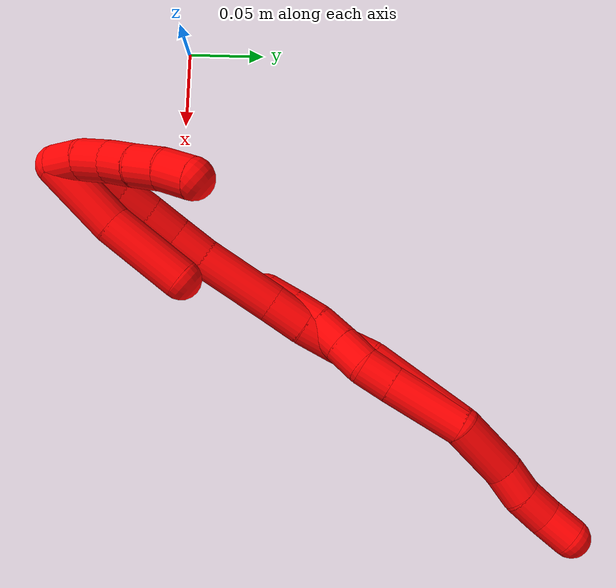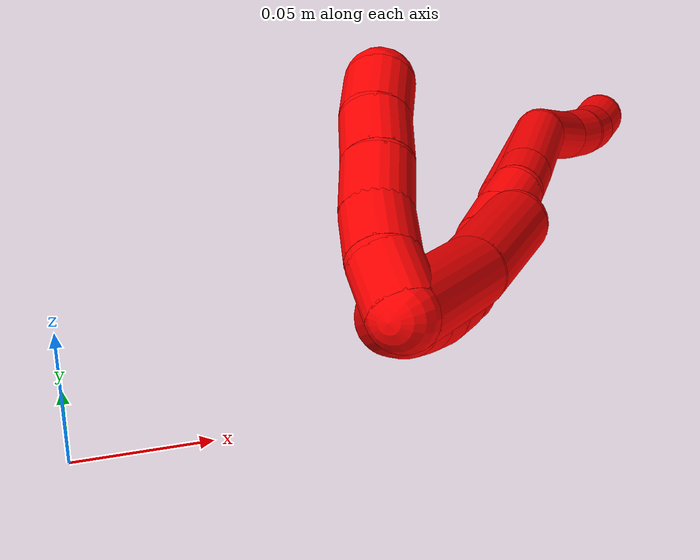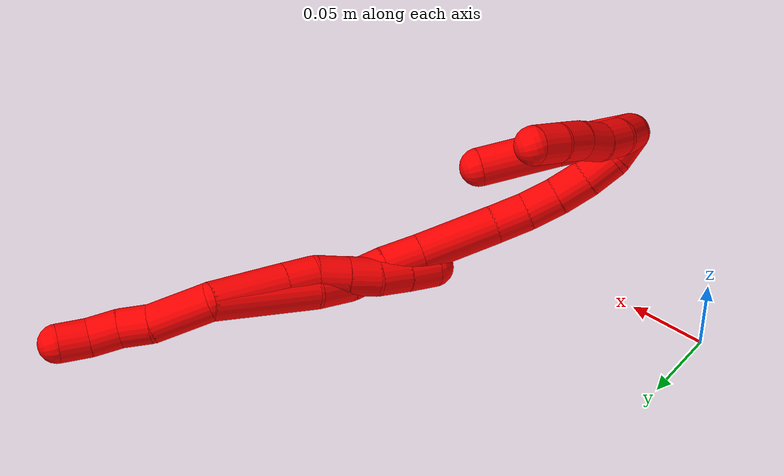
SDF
<sdf version="1.7">
 <world name="default">
  <model name="2">
   <static>0</static>
   <link name="2">
    <collision name="collision-cylinder-e_1_2_8">
     <pose>0.007079 -0.001463 -0.023442 3.07928 0.292723 2.72488</pose>
     <geometry><cylinder><radius>0.0125</radius><length>0.049062</length></cylinder></geometry>
     <surface>
      <friction><ode><mu>1.16</mu><mu2>1.16</mu2><slip1>0</slip1><slip2>0</slip2></ode></friction>
      <contact><ode><kp>1e+06</kp><kd>1</kd><max_vel>0</max_vel><min_depth>0.001</min_depth></ode></contact>
     </surface>
    </collision>
    <visual name="visual-cylinder-e_1_2_8">
     <pose>0.007079 -0.001463 -0.023442 3.07928 0.292723 2.72488</pose>
     <geometry><cylinder><radius>0.0125</radius><length>0.049062</length></cylinder></geometry>
     <material><ambient>1 0 0 1</ambient></material>
    </visual>
    <collision name="collision-cylinder-e_2_8_9">
     <pose>0.01697 -0.003338 -0.056877 3.10035 0.274128 2.84476</pose>
     <geometry><cylinder><radius>0.0125</radius><length>0.020779</length></cylinder></geometry>
     <surface>
      <friction><ode><mu>1.16</mu><mu2>1.16</mu2><slip1>0</slip1><slip2>0</slip2></ode></friction>
      <contact><ode><kp>1e+06</kp><kd>1</kd><max_vel>0</max_vel><min_depth>0.001</min_depth></ode></contact>
     </surface>
    </collision>
    <visual name="visual-cylinder-e_2_8_9">
     <pose>0.01697 -0.003338 -0.056877 3.10035 0.274128 2.84476</pose>
     <geometry><cylinder><radius>0.0125</radius><length>0.020779</length></cylinder></geometry>
     <material><ambient>1 0 0 1</ambient></material>
    </visual>
    <collision name="collision-cylinder-e_3_9_10">
     <pose>0.023505 -0.001646 -0.075987 -2.91484 0.37865 -2.06928</pose>
     <geometry><cylinder><radius>0.0125</radius><length>0.020141</length></cylinder></geometry>
     <surface>
      <friction><ode><mu>1.16</mu><mu2>1.16</mu2><slip1>0</slip1><slip2>0</slip2></ode></friction>
      <contact><ode><kp>1e+06</kp><kd>1</kd><max_vel>0</max_vel><min_depth>0.001</min_depth></ode></contact>
     </surface>
    </collision>
    <visual name="visual-cylinder-e_3_9_10">
     <pose>0.023505 -0.001646 -0.075987 -2.91484 0.37865 -2.06928</pose>
     <geometry><cylinder><radius>0.0125</radius><length>0.020141</length></cylinder></geometry>
     <material><ambient>1 0 0 1</ambient></material>
    </visual>
    <collision name="collision-cylinder-e_4_10_11">
     <pose>0.031024 0.002314 -0.094177 -2.93967 0.389053 -2.1917</pose>
     <geometry><cylinder><radius>0.0125</radius><length>0.020017</length></cylinder></geometry>
     <surface>
      <friction><ode><mu>1.16</mu><mu2>1.16</mu2><slip1>0</slip1><slip2>0</slip2></ode></friction>
      <contact><ode><kp>1e+06</kp><kd>1</kd><max_vel>0</max_vel><min_depth>0.001</min_depth></ode></contact>
     </surface>
    </collision>
    <visual name="visual-cylinder-e_4_10_11">
     <pose>0.031024 0.002314 -0.094177 -2.93967 0.389053 -2.1917</pose>
     <geometry><cylinder><radius>0.0125</radius><length>0.020017</length></cylinder></geometry>
     <material><ambient>1 0 0 1</ambient></material>
    </visual>
    <collision name="collision-cylinder-e_5_11_12">
     <pose>0.038764 0.004236 -0.112439 -3.13458 0.405391 -3.10748</pose>
     <geometry><cylinder><radius>0.0125</radius><length>0.020001</length></cylinder></geometry>
     <surface>
      <friction><ode><mu>1.16</mu><mu2>1.16</mu2><slip1>0</slip1><slip2>0</slip2></ode></friction>
      <contact><ode><kp>1e+06</kp><kd>1</kd><max_vel>0</max_vel><min_depth>0.001</min_depth></ode></contact>
     </surface>
    </collision>
    <visual name="visual-cylinder-e_5_11_12">
     <pose>0.038764 0.004236 -0.112439 -3.13458 0.405391 -3.10748</pose>
     <geometry><cylinder><radius>0.0125</radius><length>0.020001</length></cylinder></geometry>
     <material><ambient>1 0 0 1</ambient></material>
    </visual>
    <collision name="collision-cylinder-e_6_12_6">
     <pose>0.046538 0.003998 -0.130862 3.10889 0.39299 2.97766</pose>
     <geometry><cylinder><radius>0.0125</radius><length>0.020001</length></cylinder></geometry>
     <surface>
      <friction><ode><mu>1.16</mu><mu2>1.16</mu2><slip1>0</slip1><slip2>0</slip2></ode></friction>
      <contact><ode><kp>1e+06</kp><kd>1</kd><max_vel>0</max_vel><min_depth>0.001</min_depth></ode></contact>
     </surface>
    </collision>
    <visual name="visual-cylinder-e_6_12_6">
     <pose>0.046538 0.003998 -0.130862 3.10889 0.39299 2.97766</pose>
     <geometry><cylinder><radius>0.0125</radius><length>0.020001</length></cylinder></geometry>
     <material><ambient>1 0 0 1</ambient></material>
    </visual>
    <collision name="collision-cylinder-e_1_2_13">
     <pose>0.002902 -1e-05 0.019615 0.000534 0.146876 3.9e-05</pose>
     <geometry><cylinder><radius>0.0125</radius><length>0.039656</length></cylinder></geometry>
     <surface>
      <friction><ode><mu>1.16</mu><mu2>1.16</mu2><slip1>0</slip1><slip2>0</slip2></ode></friction>
      <contact><ode><kp>1e+06</kp><kd>1</kd><max_vel>0</max_vel><min_depth>0.001</min_depth></ode></contact>
     </surface>
    </collision>
    <visual name="visual-cylinder-e_1_2_13">
     <pose>0.002902 -1e-05 0.019615 0.000534 0.146876 3.9e-05</pose>
     <geometry><cylinder><radius>0.0125</radius><length>0.039656</length></cylinder></geometry>
     <material><ambient>1 0 0 1</ambient></material>
    </visual>
    <collision name="collision-cylinder-e_2_13_14">
     <pose>0.006564 -0.002028 0.049067 0.201265 0.075556 0.007633</pose>
     <geometry><cylinder><radius>0.0125</radius><length>0.020137</length></cylinder></geometry>
     <surface>
      <friction><ode><mu>1.16</mu><mu2>1.16</mu2><slip1>0</slip1><slip2>0</slip2></ode></friction>
      <contact><ode><kp>1e+06</kp><kd>1</kd><max_vel>0</max_vel><min_depth>0.001</min_depth></ode></contact>
     </surface>
    </collision>
    <visual name="visual-cylinder-e_2_13_14">
     <pose>0.006564 -0.002028 0.049067 0.201265 0.075556 0.007633</pose>
     <geometry><cylinder><radius>0.0125</radius><length>0.020137</length></cylinder></geometry>
     <material><ambient>1 0 0 1</ambient></material>
    </visual>
    <collision name="collision-cylinder-e_3_14_15">
     <pose>0.007194 -0.004138 0.068983 0.010239 -0.012912 -6.6e-05</pose>
     <geometry><cylinder><radius>0.0125</radius><length>0.020161</length></cylinder></geometry>
     <surface>
      <friction><ode><mu>1.16</mu><mu2>1.16</mu2><slip1>0</slip1><slip2>0</slip2></ode></friction>
      <contact><ode><kp>1e+06</kp><kd>1</kd><max_vel>0</max_vel><min_depth>0.001</min_depth></ode></contact>
     </surface>
    </collision>
    <visual name="visual-cylinder-e_3_14_15">
     <pose>0.007194 -0.004138 0.068983 0.010239 -0.012912 -6.6e-05</pose>
     <geometry><cylinder><radius>0.0125</radius><length>0.020161</length></cylinder></geometry>
     <material><ambient>1 0 0 1</ambient></material>
    </visual>
    <collision name="collision-cylinder-e_4_15_5">
     <pose>0.005088 -0.004785 0.088873 0.055301 -0.198405 -0.005505</pose>
     <geometry><cylinder><radius>0.0125</radius><length>0.020045</length></cylinder></geometry>
     <surface>
      <friction><ode><mu>1.16</mu><mu2>1.16</mu2><slip1>0</slip1><slip2>0</slip2></ode></friction>
      <contact><ode><kp>1e+06</kp><kd>1</kd><max_vel>0</max_vel><min_depth>0.001</min_depth></ode></contact>
     </surface>
    </collision>
    <visual name="visual-cylinder-e_4_15_5">
     <pose>0.005088 -0.004785 0.088873 0.055301 -0.198405 -0.005505</pose>
     <geometry><cylinder><radius>0.0125</radius><length>0.020045</length></cylinder></geometry>
     <material><ambient>1 0 0 1</ambient></material>
    </visual>
    <collision name="collision-cylinder-e_1_2_16">
     <pose>0.011767 0.002171 -0.032112 -3.0741 0.3505 -2.7648</pose>
     <geometry><cylinder><radius>0.0125</radius><length>0.068537</length></cylinder></geometry>
     <surface>
      <friction><ode><mu>1.16</mu><mu2>1.16</mu2><slip1>0</slip1><slip2>0</slip2></ode></friction>
      <contact><ode><kp>1e+06</kp><kd>1</kd><max_vel>0</max_vel><min_depth>0.001</min_depth></ode></contact>
     </surface>
    </collision>
    <visual name="visual-cylinder-e_1_2_16">
     <pose>0.011767 0.002171 -0.032112 -3.0741 0.3505 -2.7648</pose>
     <geometry><cylinder><radius>0.0125</radius><length>0.068537</length></cylinder></geometry>
     <material><ambient>1 0 0 1</ambient></material>
    </visual>
    <collision name="collision-cylinder-e_2_16_17">
     <pose>0.028717 0.003304 -0.074793 3.04377 0.454059 2.72397</pose>
     <geometry><cylinder><radius>0.0125</radius><length>0.023636</length></cylinder></geometry>
     <surface>
      <friction><ode><mu>1.16</mu><mu2>1.16</mu2><slip1>0</slip1><slip2>0</slip2></ode></friction>
      <contact><ode><kp>1e+06</kp><kd>1</kd><max_vel>0</max_vel><min_depth>0.001</min_depth></ode></contact>
     </surface>
    </collision>
    <visual name="visual-cylinder-e_2_16_17">
     <pose>0.028717 0.003304 -0.074793 3.04377 0.454059 2.72397</pose>
     <geometry><cylinder><radius>0.0125</radius><length>0.023636</length></cylinder></geometry>
     <material><ambient>1 0 0 1</ambient></material>
    </visual>
    <collision name="collision-cylinder-e_3_17_18">
     <pose>0.035561 1.3e-05 -0.097433 2.957 0.134404 1.25739</pose>
     <geometry><cylinder><radius>0.0125</radius><length>0.024781</length></cylinder></geometry>
     <surface>
      <friction><ode><mu>1.16</mu><mu2>1.16</mu2><slip1>0</slip1><slip2>0</slip2></ode></friction>
      <contact><ode><kp>1e+06</kp><kd>1</kd><max_vel>0</max_vel><min_depth>0.001</min_depth></ode></contact>
     </surface>
    </collision>
    <visual name="visual-cylinder-e_3_17_18">
     <pose>0.035561 1.3e-05 -0.097433 2.957 0.134404 1.25739</pose>
     <geometry><cylinder><radius>0.0125</radius><length>0.024781</length></cylinder></geometry>
     <material><ambient>1 0 0 1</ambient></material>
    </visual>
    <collision name="collision-cylinder-e_4_18_19">
     <pose>0.038721 -0.003262 -0.121664 3.05785 0.122317 1.94159</pose>
     <geometry><cylinder><radius>0.0125</radius><length>0.024591</length></cylinder></geometry>
     <surface>
      <friction><ode><mu>1.16</mu><mu2>1.16</mu2><slip1>0</slip1><slip2>0</slip2></ode></friction>
      <contact><ode><kp>1e+06</kp><kd>1</kd><max_vel>0</max_vel><min_depth>0.001</min_depth></ode></contact>
     </surface>
    </collision>
    <visual name="visual-cylinder-e_4_18_19">
     <pose>0.038721 -0.003262 -0.121664 3.05785 0.122317 1.94159</pose>
     <geometry><cylinder><radius>0.0125</radius><length>0.024591</length></cylinder></geometry>
     <material><ambient>1 0 0 1</ambient></material>
    </visual>
    <collision name="collision-cylinder-e_5_19_20">
     <pose>0.042731 -0.006982 -0.159131 3.03533 0.098271 1.49259</pose>
     <geometry><cylinder><radius>0.0125</radius><length>0.051146</length></cylinder></geometry>
     <surface>
      <friction><ode><mu>1.16</mu><mu2>1.16</mu2><slip1>0</slip1><slip2>0</slip2></ode></friction>
      <contact><ode><kp>1e+06</kp><kd>1</kd><max_vel>0</max_vel><min_depth>0.001</min_depth></ode></contact>
     </surface>
    </collision>
    <visual name="visual-cylinder-e_5_19_20">
     <pose>0.042731 -0.006982 -0.159131 3.03533 0.098271 1.49259</pose>
     <geometry><cylinder><radius>0.0125</radius><length>0.051146</length></cylinder></geometry>
     <material><ambient>1 0 0 1</ambient></material>
    </visual>
    <collision name="collision-cylinder-e_6_20_21">
     <pose>0.045122 -0.010589 -0.195702 3.06116 -0.01038 -0.256557</pose>
     <geometry><cylinder><radius>0.0125</radius><length>0.022604</length></cylinder></geometry>
     <surface>
      <friction><ode><mu>1.16</mu><mu2>1.16</mu2><slip1>0</slip1><slip2>0</slip2></ode></friction>
      <contact><ode><kp>1e+06</kp><kd>1</kd><max_vel>0</max_vel><min_depth>0.001</min_depth></ode></contact>
     </surface>
    </collision>
    <visual name="visual-cylinder-e_6_20_21">
     <pose>0.045122 -0.010589 -0.195702 3.06116 -0.01038 -0.256557</pose>
     <geometry><cylinder><radius>0.0125</radius><length>0.022604</length></cylinder></geometry>
     <material><ambient>1 0 0 1</ambient></material>
    </visual>
    <collision name="collision-cylinder-e_7_21_22">
     <pose>0.043699 -0.012836 -0.217661 3.01704 -0.120616 -1.53861</pose>
     <geometry><cylinder><radius>0.0125</radius><length>0.021711</length></cylinder></geometry>
     <surface>
      <friction><ode><mu>1.16</mu><mu2>1.16</mu2><slip1>0</slip1><slip2>0</slip2></ode></friction>
      <contact><ode><kp>1e+06</kp><kd>1</kd><max_vel>0</max_vel><min_depth>0.001</min_depth></ode></contact>
     </surface>
    </collision>
    <visual name="visual-cylinder-e_7_21_22">
     <pose>0.043699 -0.012836 -0.217661 3.01704 -0.120616 -1.53861</pose>
     <geometry><cylinder><radius>0.0125</radius><length>0.021711</length></cylinder></geometry>
     <material><ambient>1 0 0 1</ambient></material>
    </visual>
    <collision name="collision-cylinder-e_8_22_23">
     <pose>0.040593 -0.016293 -0.238833 2.94209 -0.166758 -1.39149</pose>
     <geometry><cylinder><radius>0.0125</radius><length>0.021683</length></cylinder></geometry>
     <surface>
      <friction><ode><mu>1.16</mu><mu2>1.16</mu2><slip1>0</slip1><slip2>0</slip2></ode></friction>
      <contact><ode><kp>1e+06</kp><kd>1</kd><max_vel>0</max_vel><min_depth>0.001</min_depth></ode></contact>
     </surface>
    </collision>
    <visual name="visual-cylinder-e_8_22_23">
     <pose>0.040593 -0.016293 -0.238833 2.94209 -0.166758 -1.39149</pose>
     <geometry><cylinder><radius>0.0125</radius><length>0.021683</length></cylinder></geometry>
     <material><ambient>1 0 0 1</ambient></material>
    </visual>
    <collision name="collision-cylinder-e_9_23_24">
     <pose>0.03623 -0.021263 -0.258947 2.85387 -0.249825 -1.42835</pose>
     <geometry><cylinder><radius>0.0125</radius><length>0.020742</length></cylinder></geometry>
     <surface>
      <friction><ode><mu>1.16</mu><mu2>1.16</mu2><slip1>0</slip1><slip2>0</slip2></ode></friction>
      <contact><ode><kp>1e+06</kp><kd>1</kd><max_vel>0</max_vel><min_depth>0.001</min_depth></ode></contact>
     </surface>
    </collision>
    <visual name="visual-cylinder-e_9_23_24">
     <pose>0.03623 -0.021263 -0.258947 2.85387 -0.249825 -1.42835</pose>
     <geometry><cylinder><radius>0.0125</radius><length>0.020742</length></cylinder></geometry>
     <material><ambient>1 0 0 1</ambient></material>
    </visual>
    <collision name="collision-cylinder-e_10_24_1">
     <pose>0.032067 -0.030029 -0.276844 2.5203 -0.156056 -0.47778</pose>
     <geometry><cylinder><radius>0.0125</radius><length>0.020569</length></cylinder></geometry>
     <surface>
      <friction><ode><mu>1.16</mu><mu2>1.16</mu2><slip1>0</slip1><slip2>0</slip2></ode></friction>
      <contact><ode><kp>1e+06</kp><kd>1</kd><max_vel>0</max_vel><min_depth>0.001</min_depth></ode></contact>
     </surface>
    </collision>
    <visual name="visual-cylinder-e_10_24_1">
     <pose>0.032067 -0.030029 -0.276844 2.5203 -0.156056 -0.47778</pose>
     <geometry><cylinder><radius>0.0125</radius><length>0.020569</length></cylinder></geometry>
     <material><ambient>1 0 0 1</ambient></material>
    </visual>
    <collision name="collision-cylinder-e_1_1_25">
     <pose>0.029834 -0.038372 -0.261208 0.101342 -0.026417 -0.00134</pose>
     <geometry><cylinder><radius>0.0125</radius><length>0.048057</length></cylinder></geometry>
     <surface>
      <friction><ode><mu>1.16</mu><mu2>1.16</mu2><slip1>0</slip1><slip2>0</slip2></ode></friction>
      <contact><ode><kp>1e+06</kp><kd>1</kd><max_vel>0</max_vel><min_depth>0.001</min_depth></ode></contact>
     </surface>
    </collision>
    <visual name="visual-cylinder-e_1_1_25">
     <pose>0.029834 -0.038372 -0.261208 0.101342 -0.026417 -0.00134</pose>
     <geometry><cylinder><radius>0.0125</radius><length>0.048057</length></cylinder></geometry>
     <material><ambient>1 0 0 1</ambient></material>
    </visual>
    <collision name="collision-cylinder-e_2_25_4">
     <pose>0.025649 -0.040984 -0.211584 0.007048 -0.13713 -0.000484</pose>
     <geometry><cylinder><radius>0.0125</radius><length>0.051943</length></cylinder></geometry>
     <surface>
      <friction><ode><mu>1.16</mu><mu2>1.16</mu2><slip1>0</slip1><slip2>0</slip2></ode></friction>
      <contact><ode><kp>1e+06</kp><kd>1</kd><max_vel>0</max_vel><min_depth>0.001</min_depth></ode></contact>
     </surface>
    </collision>
    <visual name="visual-cylinder-e_2_25_4">
     <pose>0.025649 -0.040984 -0.211584 0.007048 -0.13713 -0.000484</pose>
     <geometry><cylinder><radius>0.0125</radius><length>0.051943</length></cylinder></geometry>
     <material><ambient>1 0 0 1</ambient></material>
    </visual>
    <collision name="collision-cylinder-e_1_1_26">
     <pose>0.02273 -0.032483 -0.2798 -0.577738 -0.88493 0.279767</pose>
     <geometry><cylinder><radius>0.0125</radius><length>0.02</length></cylinder></geometry>
     <surface>
      <friction><ode><mu>1.16</mu><mu2>1.16</mu2><slip1>0</slip1><slip2>0</slip2></ode></friction>
      <contact><ode><kp>1e+06</kp><kd>1</kd><max_vel>0</max_vel><min_depth>0.001</min_depth></ode></contact>
     </surface>
    </collision>
    <visual name="visual-cylinder-e_1_1_26">
     <pose>0.02273 -0.032483 -0.2798 -0.577738 -0.88493 0.279767</pose>
     <geometry><cylinder><radius>0.0125</radius><length>0.02</length></cylinder></geometry>
     <material><ambient>1 0 0 1</ambient></material>
    </visual>
    <collision name="collision-cylinder-e_2_26_27">
     <pose>0.008269 -0.026664 -0.267478 -0.324585 -0.737276 0.126331</pose>
     <geometry><cylinder><radius>0.0125</radius><length>0.02</length></cylinder></geometry>
     <surface>
      <friction><ode><mu>1.16</mu><mu2>1.16</mu2><slip1>0</slip1><slip2>0</slip2></ode></friction>
      <contact><ode><kp>1e+06</kp><kd>1</kd><max_vel>0</max_vel><min_depth>0.001</min_depth></ode></contact>
     </surface>
    </collision>
    <visual name="visual-cylinder-e_2_26_27">
     <pose>0.008269 -0.026664 -0.267478 -0.324585 -0.737276 0.126331</pose>
     <geometry><cylinder><radius>0.0125</radius><length>0.02</length></cylinder></geometry>
     <material><ambient>1 0 0 1</ambient></material>
    </visual>
    <collision name="collision-cylinder-e_3_27_28">
     <pose>-0.005899 -0.023764 -0.253806 -0.080762 -0.839739 0.036069</pose>
     <geometry><cylinder><radius>0.0125</radius><length>0.02</length></cylinder></geometry>
     <surface>
      <friction><ode><mu>1.16</mu><mu2>1.16</mu2><slip1>0</slip1><slip2>0</slip2></ode></friction>
      <contact><ode><kp>1e+06</kp><kd>1</kd><max_vel>0</max_vel><min_depth>0.001</min_depth></ode></contact>
     </surface>
    </collision>
    <visual name="visual-cylinder-e_3_27_28">
     <pose>-0.005899 -0.023764 -0.253806 -0.080762 -0.839739 0.036069</pose>
     <geometry><cylinder><radius>0.0125</radius><length>0.02</length></cylinder></geometry>
     <material><ambient>1 0 0 1</ambient></material>
    </visual>
    <collision name="collision-cylinder-e_4_28_29">
     <pose>-0.020333 -0.021712 -0.240162 -0.213175 -0.773941 0.087148</pose>
     <geometry><cylinder><radius>0.0125</radius><length>0.02</length></cylinder></geometry>
     <surface>
      <friction><ode><mu>1.16</mu><mu2>1.16</mu2><slip1>0</slip1><slip2>0</slip2></ode></friction>
      <contact><ode><kp>1e+06</kp><kd>1</kd><max_vel>0</max_vel><min_depth>0.001</min_depth></ode></contact>
     </surface>
    </collision>
    <visual name="visual-cylinder-e_4_28_29">
     <pose>-0.020333 -0.021712 -0.240162 -0.213175 -0.773941 0.087148</pose>
     <geometry><cylinder><radius>0.0125</radius><length>0.02</length></cylinder></geometry>
     <material><ambient>1 0 0 1</ambient></material>
    </visual>
    <collision name="collision-cylinder-e_5_29_3">
     <pose>-0.033308 -0.01928 -0.225214 -0.115053 -0.641661 0.038271</pose>
     <geometry><cylinder><radius>0.0125</radius><length>0.02</length></cylinder></geometry>
     <surface>
      <friction><ode><mu>1.16</mu><mu2>1.16</mu2><slip1>0</slip1><slip2>0</slip2></ode></friction>
      <contact><ode><kp>1e+06</kp><kd>1</kd><max_vel>0</max_vel><min_depth>0.001</min_depth></ode></contact>
     </surface>
    </collision>
    <visual name="visual-cylinder-e_5_29_3">
     <pose>-0.033308 -0.01928 -0.225214 -0.115053 -0.641661 0.038271</pose>
     <geometry><cylinder><radius>0.0125</radius><length>0.02</length></cylinder></geometry>
     <material><ambient>1 0 0 1</ambient></material>
    </visual>
    <collision name="collision-sphere-3">
     <pose>-0.039293 -0.01836 -0.217256 0 -0 0</pose>
     <geometry><sphere><radius>0.0125</radius></sphere></geometry>
     <surface>
      <friction><ode><mu>1.16</mu><mu2>1.16</mu2><slip1>0</slip1><slip2>0</slip2></ode></friction>
      <contact><ode><kp>1e+06</kp><kd>1</kd><max_vel>0</max_vel><min_depth>0.001</min_depth></ode></contact>
     </surface>
    </collision>
    <visual name="visual-sphere-3">
     <pose>-0.039293 -0.01836 -0.217256 0 -0 0</pose>
     <geometry><sphere><radius>0.0125</radius></sphere></geometry>
     <material><ambient>1 0 0 1</ambient></material>
    </visual>
    <collision name="collision-sphere-29">
     <pose>-0.027323 -0.020199 -0.233172 0 -0 0</pose>
     <geometry><sphere><radius>0.0125</radius></sphere></geometry>
     <surface>
      <friction><ode><mu>1.16</mu><mu2>1.16</mu2><slip1>0</slip1><slip2>0</slip2></ode></friction>
      <contact><ode><kp>1e+06</kp><kd>1</kd><max_vel>0</max_vel><min_depth>0.001</min_depth></ode></contact>
     </surface>
    </collision>
    <visual name="visual-sphere-29">
     <pose>-0.027323 -0.020199 -0.233172 0 -0 0</pose>
     <geometry><sphere><radius>0.0125</radius></sphere></geometry>
     <material><ambient>1 0 0 1</ambient></material>
    </visual>
    <collision name="collision-sphere-28">
     <pose>-0.013344 -0.023225 -0.247152 0 -0 0</pose>
     <geometry><sphere><radius>0.0125</radius></sphere></geometry>
     <surface>
      <friction><ode><mu>1.16</mu><mu2>1.16</mu2><slip1>0</slip1><slip2>0</slip2></ode></friction>
      <contact><ode><kp>1e+06</kp><kd>1</kd><max_vel>0</max_vel><min_depth>0.001</min_depth></ode></contact>
     </surface>
    </collision>
    <visual name="visual-sphere-28">
     <pose>-0.013344 -0.023225 -0.247152 0 -0 0</pose>
     <geometry><sphere><radius>0.0125</radius></sphere></geometry>
     <material><ambient>1 0 0 1</ambient></material>
    </visual>
    <collision name="collision-sphere-27">
     <pose>0.001546 -0.024303 -0.260461 0 -0 0</pose>
     <geometry><sphere><radius>0.0125</radius></sphere></geometry>
     <surface>
      <friction><ode><mu>1.16</mu><mu2>1.16</mu2><slip1>0</slip1><slip2>0</slip2></ode></friction>
      <contact><ode><kp>1e+06</kp><kd>1</kd><max_vel>0</max_vel><min_depth>0.001</min_depth></ode></contact>
     </surface>
    </collision>
    <visual name="visual-sphere-27">
     <pose>0.001546 -0.024303 -0.260461 0 -0 0</pose>
     <geometry><sphere><radius>0.0125</radius></sphere></geometry>
     <material><ambient>1 0 0 1</ambient></material>
    </visual>
    <collision name="collision-sphere-26">
     <pose>0.014991 -0.029025 -0.274494 0 -0 0</pose>
     <geometry><sphere><radius>0.0125</radius></sphere></geometry>
     <surface>
      <friction><ode><mu>1.16</mu><mu2>1.16</mu2><slip1>0</slip1><slip2>0</slip2></ode></friction>
      <contact><ode><kp>1e+06</kp><kd>1</kd><max_vel>0</max_vel><min_depth>0.001</min_depth></ode></contact>
     </surface>
    </collision>
    <visual name="visual-sphere-26">
     <pose>0.014991 -0.029025 -0.274494 0 -0 0</pose>
     <geometry><sphere><radius>0.0125</radius></sphere></geometry>
     <material><ambient>1 0 0 1</ambient></material>
    </visual>
    <collision name="collision-sphere-4">
     <pose>0.022099 -0.041165 -0.185857 0 -0 0</pose>
     <geometry><sphere><radius>0.0125</radius></sphere></geometry>
     <surface>
      <friction><ode><mu>1.16</mu><mu2>1.16</mu2><slip1>0</slip1><slip2>0</slip2></ode></friction>
      <contact><ode><kp>1e+06</kp><kd>1</kd><max_vel>0</max_vel><min_depth>0.001</min_depth></ode></contact>
     </surface>
    </collision>
    <visual name="visual-sphere-4">
     <pose>0.022099 -0.041165 -0.185857 0 -0 0</pose>
     <geometry><sphere><radius>0.0125</radius></sphere></geometry>
     <material><ambient>1 0 0 1</ambient></material>
    </visual>
    <collision name="collision-sphere-25">
     <pose>0.029199 -0.040803 -0.237311 0 -0 0</pose>
     <geometry><sphere><radius>0.0125</radius></sphere></geometry>
     <surface>
      <friction><ode><mu>1.16</mu><mu2>1.16</mu2><slip1>0</slip1><slip2>0</slip2></ode></friction>
      <contact><ode><kp>1e+06</kp><kd>1</kd><max_vel>0</max_vel><min_depth>0.001</min_depth></ode></contact>
     </surface>
    </collision>
    <visual name="visual-sphere-25">
     <pose>0.029199 -0.040803 -0.237311 0 -0 0</pose>
     <geometry><sphere><radius>0.0125</radius></sphere></geometry>
     <material><ambient>1 0 0 1</ambient></material>
    </visual>
    <collision name="collision-sphere-1">
     <pose>0.030469 -0.035942 -0.285105 0 -0 0</pose>
     <geometry><sphere><radius>0.0125</radius></sphere></geometry>
     <surface>
      <friction><ode><mu>1.16</mu><mu2>1.16</mu2><slip1>0</slip1><slip2>0</slip2></ode></friction>
      <contact><ode><kp>1e+06</kp><kd>1</kd><max_vel>0</max_vel><min_depth>0.001</min_depth></ode></contact>
     </surface>
    </collision>
    <visual name="visual-sphere-1">
     <pose>0.030469 -0.035942 -0.285105 0 -0 0</pose>
     <geometry><sphere><radius>0.0125</radius></sphere></geometry>
     <material><ambient>1 0 0 1</ambient></material>
    </visual>
    <collision name="collision-sphere-24">
     <pose>0.033666 -0.024115 -0.268583 0 -0 0</pose>
     <geometry><sphere><radius>0.0125</radius></sphere></geometry>
     <surface>
      <friction><ode><mu>1.16</mu><mu2>1.16</mu2><slip1>0</slip1><slip2>0</slip2></ode></friction>
      <contact><ode><kp>1e+06</kp><kd>1</kd><max_vel>0</max_vel><min_depth>0.001</min_depth></ode></contact>
     </surface>
    </collision>
    <visual name="visual-sphere-24">
     <pose>0.033666 -0.024115 -0.268583 0 -0 0</pose>
     <geometry><sphere><radius>0.0125</radius></sphere></geometry>
     <material><ambient>1 0 0 1</ambient></material>
    </visual>
    <collision name="collision-sphere-23">
     <pose>0.038794 -0.018412 -0.249311 0 -0 0</pose>
     <geometry><sphere><radius>0.0125</radius></sphere></geometry>
     <surface>
      <friction><ode><mu>1.16</mu><mu2>1.16</mu2><slip1>0</slip1><slip2>0</slip2></ode></friction>
      <contact><ode><kp>1e+06</kp><kd>1</kd><max_vel>0</max_vel><min_depth>0.001</min_depth></ode></contact>
     </surface>
    </collision>
    <visual name="visual-sphere-23">
     <pose>0.038794 -0.018412 -0.249311 0 -0 0</pose>
     <geometry><sphere><radius>0.0125</radius></sphere></geometry>
     <material><ambient>1 0 0 1</ambient></material>
    </visual>
    <collision name="collision-sphere-22">
     <pose>0.042393 -0.014174 -0.228354 0 -0 0</pose>
     <geometry><sphere><radius>0.0125</radius></sphere></geometry>
     <surface>
      <friction><ode><mu>1.16</mu><mu2>1.16</mu2><slip1>0</slip1><slip2>0</slip2></ode></friction>
      <contact><ode><kp>1e+06</kp><kd>1</kd><max_vel>0</max_vel><min_depth>0.001</min_depth></ode></contact>
     </surface>
    </collision>
    <visual name="visual-sphere-22">
     <pose>0.042393 -0.014174 -0.228354 0 -0 0</pose>
     <geometry><sphere><radius>0.0125</radius></sphere></geometry>
     <material><ambient>1 0 0 1</ambient></material>
    </visual>
    <collision name="collision-sphere-21">
     <pose>0.045005 -0.011497 -0.206967 0 -0 0</pose>
     <geometry><sphere><radius>0.0125</radius></sphere></geometry>
     <surface>
      <friction><ode><mu>1.16</mu><mu2>1.16</mu2><slip1>0</slip1><slip2>0</slip2></ode></friction>
      <contact><ode><kp>1e+06</kp><kd>1</kd><max_vel>0</max_vel><min_depth>0.001</min_depth></ode></contact>
     </surface>
    </collision>
    <visual name="visual-sphere-21">
     <pose>0.045005 -0.011497 -0.206967 0 -0 0</pose>
     <geometry><sphere><radius>0.0125</radius></sphere></geometry>
     <material><ambient>1 0 0 1</ambient></material>
    </visual>
    <collision name="collision-sphere-12">
     <pose>0.042708 0.0043 -0.121628 0 -0 0</pose>
     <geometry><sphere><radius>0.0125</radius></sphere></geometry>
     <surface>
      <friction><ode><mu>1.16</mu><mu2>1.16</mu2><slip1>0</slip1><slip2>0</slip2></ode></friction>
      <contact><ode><kp>1e+06</kp><kd>1</kd><max_vel>0</max_vel><min_depth>0.001</min_depth></ode></contact>
     </surface>
    </collision>
    <visual name="visual-sphere-12">
     <pose>0.042708 0.0043 -0.121628 0 -0 0</pose>
     <geometry><sphere><radius>0.0125</radius></sphere></geometry>
     <material><ambient>1 0 0 1</ambient></material>
    </visual>
    <collision name="collision-sphere-11">
     <pose>0.03482 0.004172 -0.103249 0 -0 0</pose>
     <geometry><sphere><radius>0.0125</radius></sphere></geometry>
     <surface>
      <friction><ode><mu>1.16</mu><mu2>1.16</mu2><slip1>0</slip1><slip2>0</slip2></ode></friction>
      <contact><ode><kp>1e+06</kp><kd>1</kd><max_vel>0</max_vel><min_depth>0.001</min_depth></ode></contact>
     </surface>
    </collision>
    <visual name="visual-sphere-11">
     <pose>0.03482 0.004172 -0.103249 0 -0 0</pose>
     <geometry><sphere><radius>0.0125</radius></sphere></geometry>
     <material><ambient>1 0 0 1</ambient></material>
    </visual>
    <collision name="collision-sphere-10">
     <pose>0.027228 0.000457 -0.085104 0 -0 0</pose>
     <geometry><sphere><radius>0.0125</radius></sphere></geometry>
     <surface>
      <friction><ode><mu>1.16</mu><mu2>1.16</mu2><slip1>0</slip1><slip2>0</slip2></ode></friction>
      <contact><ode><kp>1e+06</kp><kd>1</kd><max_vel>0</max_vel><min_depth>0.001</min_depth></ode></contact>
     </surface>
    </collision>
    <visual name="visual-sphere-10">
     <pose>0.027228 0.000457 -0.085104 0 -0 0</pose>
     <geometry><sphere><radius>0.0125</radius></sphere></geometry>
     <material><ambient>1 0 0 1</ambient></material>
    </visual>
    <collision name="collision-sphere-9">
     <pose>0.019782 -0.00375 -0.06687 0 -0 0</pose>
     <geometry><sphere><radius>0.0125</radius></sphere></geometry>
     <surface>
      <friction><ode><mu>1.16</mu><mu2>1.16</mu2><slip1>0</slip1><slip2>0</slip2></ode></friction>
      <contact><ode><kp>1e+06</kp><kd>1</kd><max_vel>0</max_vel><min_depth>0.001</min_depth></ode></contact>
     </surface>
    </collision>
    <visual name="visual-sphere-9">
     <pose>0.019782 -0.00375 -0.06687 0 -0 0</pose>
     <geometry><sphere><radius>0.0125</radius></sphere></geometry>
     <material><ambient>1 0 0 1</ambient></material>
    </visual>
    <collision name="collision-sphere-2">
     <geometry><sphere><radius>0.0125</radius></sphere></geometry>
     <surface>
      <friction><ode><mu>1.16</mu><mu2>1.16</mu2><slip1>0</slip1><slip2>0</slip2></ode></friction>
      <contact><ode><kp>1e+06</kp><kd>1</kd><max_vel>0</max_vel><min_depth>0.001</min_depth></ode></contact>
     </surface>
    </collision>
    <visual name="visual-sphere-2">
     <geometry><sphere><radius>0.0125</radius></sphere></geometry>
     <material><ambient>1 0 0 1</ambient></material>
    </visual>
    <collision name="collision-sphere-19">
     <pose>0.040222 -0.004282 -0.133825 0 -0 0</pose>
     <geometry><sphere><radius>0.0125</radius></sphere></geometry>
     <surface>
      <friction><ode><mu>1.16</mu><mu2>1.16</mu2><slip1>0</slip1><slip2>0</slip2></ode></friction>
      <contact><ode><kp>1e+06</kp><kd>1</kd><max_vel>0</max_vel><min_depth>0.001</min_depth></ode></contact>
     </surface>
    </collision>
    <visual name="visual-sphere-19">
     <pose>0.040222 -0.004282 -0.133825 0 -0 0</pose>
     <geometry><sphere><radius>0.0125</radius></sphere></geometry>
     <material><ambient>1 0 0 1</ambient></material>
    </visual>
    <collision name="collision-sphere-8">
     <pose>0.014157 -0.002925 -0.046884 0 -0 0</pose>
     <geometry><sphere><radius>0.0125</radius></sphere></geometry>
     <surface>
      <friction><ode><mu>1.16</mu><mu2>1.16</mu2><slip1>0</slip1><slip2>0</slip2></ode></friction>
      <contact><ode><kp>1e+06</kp><kd>1</kd><max_vel>0</max_vel><min_depth>0.001</min_depth></ode></contact>
     </surface>
    </collision>
    <visual name="visual-sphere-8">
     <pose>0.014157 -0.002925 -0.046884 0 -0 0</pose>
     <geometry><sphere><radius>0.0125</radius></sphere></geometry>
     <material><ambient>1 0 0 1</ambient></material>
    </visual>
    <collision name="collision-sphere-6">
     <pose>0.050368 0.003696 -0.140095 0 -0 0</pose>
     <geometry><sphere><radius>0.0125</radius></sphere></geometry>
     <surface>
      <friction><ode><mu>1.16</mu><mu2>1.16</mu2><slip1>0</slip1><slip2>0</slip2></ode></friction>
      <contact><ode><kp>1e+06</kp><kd>1</kd><max_vel>0</max_vel><min_depth>0.001</min_depth></ode></contact>
     </surface>
    </collision>
    <visual name="visual-sphere-6">
     <pose>0.050368 0.003696 -0.140095 0 -0 0</pose>
     <geometry><sphere><radius>0.0125</radius></sphere></geometry>
     <material><ambient>1 0 0 1</ambient></material>
    </visual>
    <collision name="collision-sphere-13">
     <pose>0.005804 -2.1e-05 0.039229 0 -0 0</pose>
     <geometry><sphere><radius>0.0125</radius></sphere></geometry>
     <surface>
      <friction><ode><mu>1.16</mu><mu2>1.16</mu2><slip1>0</slip1><slip2>0</slip2></ode></friction>
      <contact><ode><kp>1e+06</kp><kd>1</kd><max_vel>0</max_vel><min_depth>0.001</min_depth></ode></contact>
     </surface>
    </collision>
    <visual name="visual-sphere-13">
     <pose>0.005804 -2.1e-05 0.039229 0 -0 0</pose>
     <geometry><sphere><radius>0.0125</radius></sphere></geometry>
     <material><ambient>1 0 0 1</ambient></material>
    </visual>
    <collision name="collision-sphere-14">
     <pose>0.007324 -0.004035 0.058904 0 -0 0</pose>
     <geometry><sphere><radius>0.0125</radius></sphere></geometry>
     <surface>
      <friction><ode><mu>1.16</mu><mu2>1.16</mu2><slip1>0</slip1><slip2>0</slip2></ode></friction>
      <contact><ode><kp>1e+06</kp><kd>1</kd><max_vel>0</max_vel><min_depth>0.001</min_depth></ode></contact>
     </surface>
    </collision>
    <visual name="visual-sphere-14">
     <pose>0.007324 -0.004035 0.058904 0 -0 0</pose>
     <geometry><sphere><radius>0.0125</radius></sphere></geometry>
     <material><ambient>1 0 0 1</ambient></material>
    </visual>
    <collision name="collision-sphere-15">
     <pose>0.007063 -0.004242 0.079062 0 -0 0</pose>
     <geometry><sphere><radius>0.0125</radius></sphere></geometry>
     <surface>
      <friction><ode><mu>1.16</mu><mu2>1.16</mu2><slip1>0</slip1><slip2>0</slip2></ode></friction>
      <contact><ode><kp>1e+06</kp><kd>1</kd><max_vel>0</max_vel><min_depth>0.001</min_depth></ode></contact>
     </surface>
    </collision>
    <visual name="visual-sphere-15">
     <pose>0.007063 -0.004242 0.079062 0 -0 0</pose>
     <geometry><sphere><radius>0.0125</radius></sphere></geometry>
     <material><ambient>1 0 0 1</ambient></material>
    </visual>
    <collision name="collision-sphere-5">
     <pose>0.003112 -0.005328 0.098684 0 -0 0</pose>
     <geometry><sphere><radius>0.0125</radius></sphere></geometry>
     <surface>
      <friction><ode><mu>1.16</mu><mu2>1.16</mu2><slip1>0</slip1><slip2>0</slip2></ode></friction>
      <contact><ode><kp>1e+06</kp><kd>1</kd><max_vel>0</max_vel><min_depth>0.001</min_depth></ode></contact>
     </surface>
    </collision>
    <visual name="visual-sphere-5">
     <pose>0.003112 -0.005328 0.098684 0 -0 0</pose>
     <geometry><sphere><radius>0.0125</radius></sphere></geometry>
     <material><ambient>1 0 0 1</ambient></material>
    </visual>
    <collision name="collision-sphere-16">
     <pose>0.023533 0.004341 -0.064223 0 -0 0</pose>
     <geometry><sphere><radius>0.0125</radius></sphere></geometry>
     <surface>
      <friction><ode><mu>1.16</mu><mu2>1.16</mu2><slip1>0</slip1><slip2>0</slip2></ode></friction>
      <contact><ode><kp>1e+06</kp><kd>1</kd><max_vel>0</max_vel><min_depth>0.001</min_depth></ode></contact>
     </surface>
    </collision>
    <visual name="visual-sphere-16">
     <pose>0.023533 0.004341 -0.064223 0 -0 0</pose>
     <geometry><sphere><radius>0.0125</radius></sphere></geometry>
     <material><ambient>1 0 0 1</ambient></material>
    </visual>
    <collision name="collision-sphere-17">
     <pose>0.0339 0.002267 -0.085363 0 -0 0</pose>
     <geometry><sphere><radius>0.0125</radius></sphere></geometry>
     <surface>
      <friction><ode><mu>1.16</mu><mu2>1.16</mu2><slip1>0</slip1><slip2>0</slip2></ode></friction>
      <contact><ode><kp>1e+06</kp><kd>1</kd><max_vel>0</max_vel><min_depth>0.001</min_depth></ode></contact>
     </surface>
    </collision>
    <visual name="visual-sphere-17">
     <pose>0.0339 0.002267 -0.085363 0 -0 0</pose>
     <geometry><sphere><radius>0.0125</radius></sphere></geometry>
     <material><ambient>1 0 0 1</ambient></material>
    </visual>
    <collision name="collision-sphere-18">
     <pose>0.037221 -0.002241 -0.109503 0 -0 0</pose>
     <geometry><sphere><radius>0.0125</radius></sphere></geometry>
     <surface>
      <friction><ode><mu>1.16</mu><mu2>1.16</mu2><slip1>0</slip1><slip2>0</slip2></ode></friction>
      <contact><ode><kp>1e+06</kp><kd>1</kd><max_vel>0</max_vel><min_depth>0.001</min_depth></ode></contact>
     </surface>
    </collision>
    <visual name="visual-sphere-18">
     <pose>0.037221 -0.002241 -0.109503 0 -0 0</pose>
     <geometry><sphere><radius>0.0125</radius></sphere></geometry>
     <material><ambient>1 0 0 1</ambient></material>
    </visual>
    <collision name="collision-sphere-20">
     <pose>0.04524 -0.009681 -0.184438 0 -0 0</pose>
     <geometry><sphere><radius>0.0125</radius></sphere></geometry>
     <surface>
      <friction><ode><mu>1.16</mu><mu2>1.16</mu2><slip1>0</slip1><slip2>0</slip2></ode></friction>
      <contact><ode><kp>1e+06</kp><kd>1</kd><max_vel>0</max_vel><min_depth>0.001</min_depth></ode></contact>
     </surface>
    </collision>
    <visual name="visual-sphere-20">
     <pose>0.04524 -0.009681 -0.184438 0 -0 0</pose>
     <geometry><sphere><radius>0.0125</radius></sphere></geometry>
     <material><ambient>1 0 0 1</ambient></material>
    </visual>
    <inertial>
     <pose>0.021272 -0.0117 -0.12994 0 -0 0</pose>
     <mass>0.75</mass>
     <inertia><ixx>8e-06</ixx><ixy>0</ixy><ixz>0</ixz><iyy>8.9e-05</iyy><iyz>0</iyz><izz>-2.1e-05</izz></inertia>
    </inertial>
   </link>
   <pose>0.245202 0.182452 0.032906 -2.07637 1.14586 -1.15321</pose>
  </model>
 </world>
</sdf>
